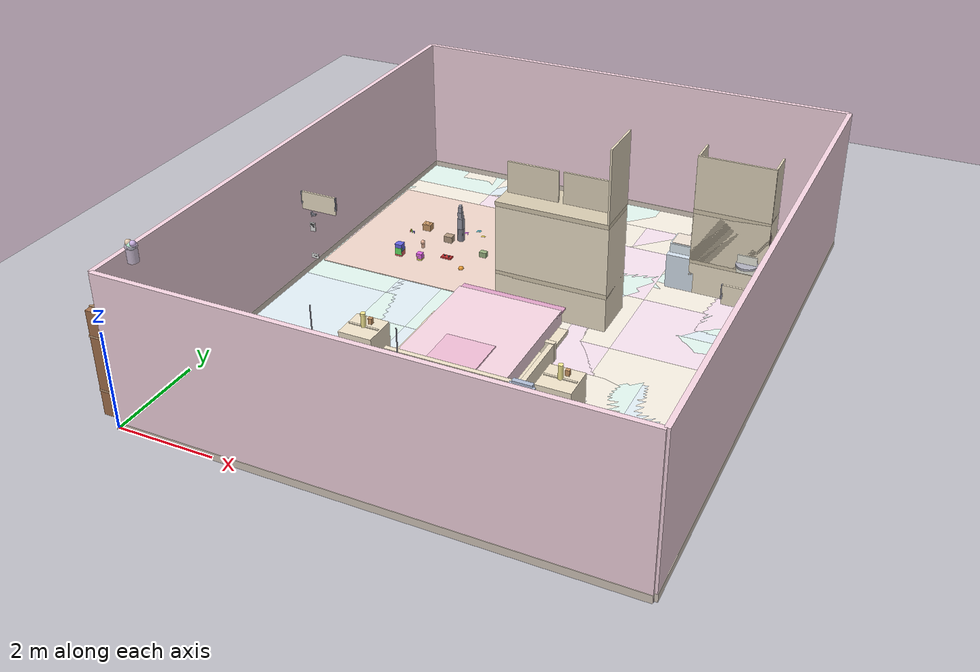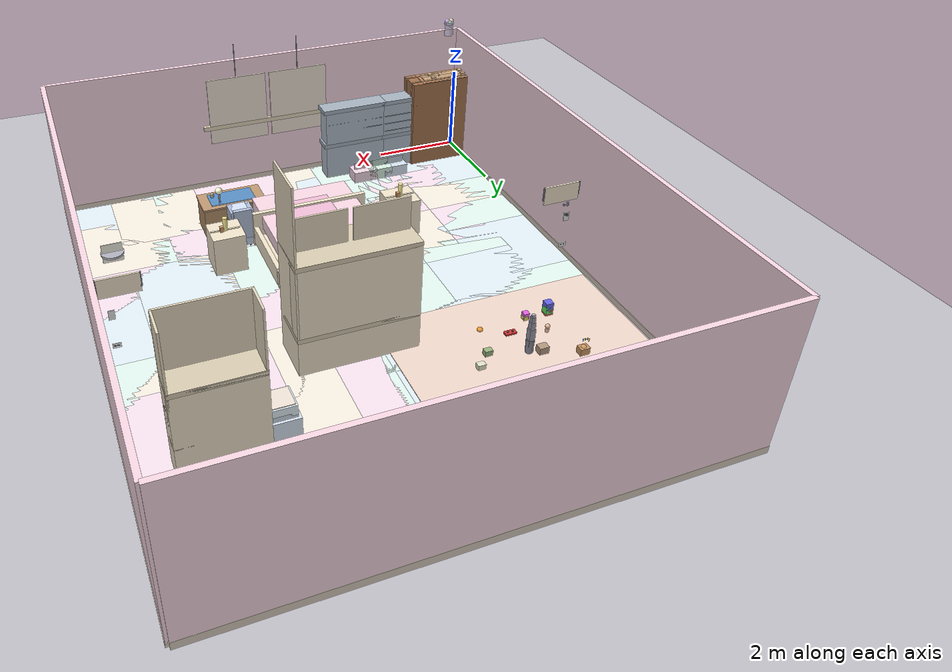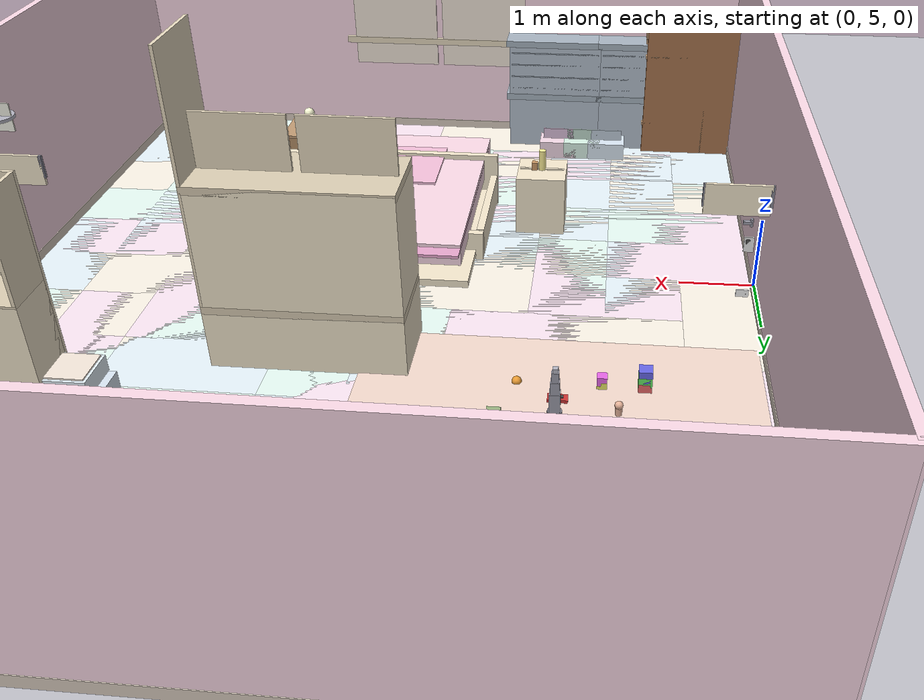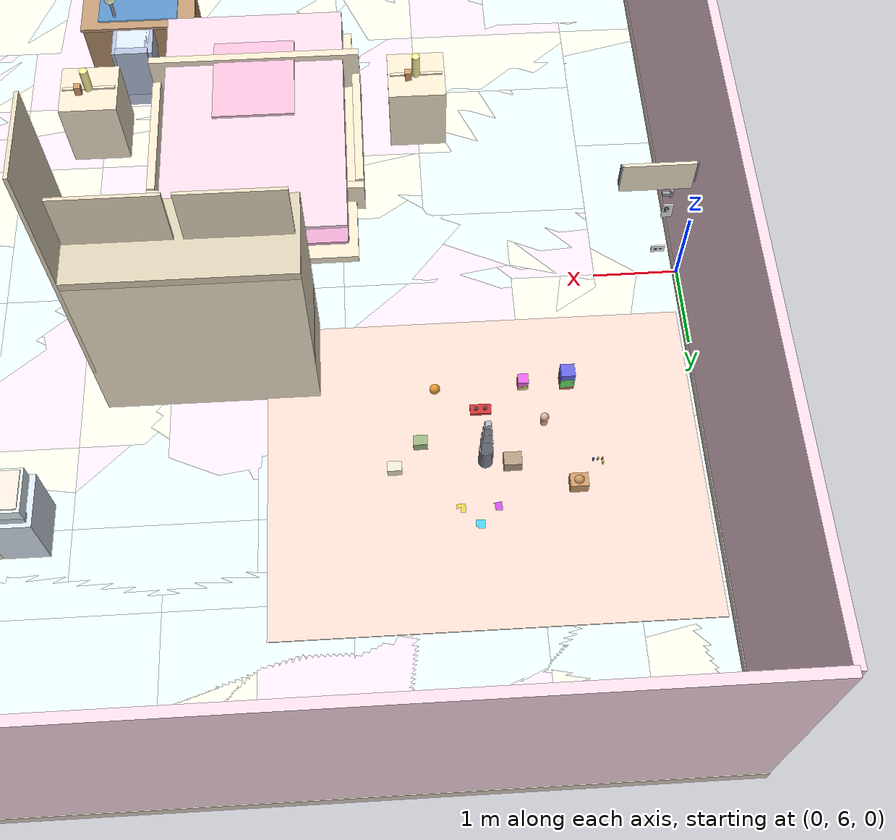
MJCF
<mujoco model="kids_room">
  <compiler angle="degree" inertiafromgeom="true"/>
  <option gravity="0 0 -9.81" integrator="RK4" timestep="0.002">
    <flag warmstart="enable"/>
  </option>
  <default>
    <geom solref="0.01 1" solimp="0.95 0.95 0.001"/>
    <default class="floor"><geom friction="1 0.005 0.0001" rgba="0.75 0.75 0.78 1" contype="1" conaffinity="1"/></default>
    <default class="wall"><geom type="box" rgba="0.98 0.85 0.9 1" contype="1" conaffinity="1"/></default>
    <default class="ceiling"><geom type="box" rgba="0.93 0.93 0.95 1" contype="1" conaffinity="1"/></default>
    <default class="furniture"><geom friction="0.8 0.03 0.001" rgba="0.65 0.65 0.68 1" contype="1" conaffinity="1"/></default>
    <default class="wood"><geom friction="0.8 0.03 0.001" rgba="0.95 0.9 0.8 1" contype="1" conaffinity="1"/></default>
    <default class="metal"><geom friction="0.9 0.02 0.001" rgba="0.55 0.55 0.6 1" contype="1" conaffinity="1"/></default>
    <default class="plastic"><geom friction="0.6 0.02 0.001" rgba="0.7 0.7 0.8 1" contype="1" conaffinity="1"/></default>
    <default class="toy"><geom type="sphere" size="0.08" friction="0.6 0.01 0.001" rgba="0.9 0.4 0.4 1" contype="1" conaffinity="1"/></default>
    <default class="lamp"><geom rgba="1 1 0.75 1" contype="0" conaffinity="0"/></default>
    <default class="arm"><geom rgba="0.45 0.48 0.52 1" friction="0.9 0.02 0.001" contype="1" conaffinity="1"/></default>
    <default class="decoration"><geom contype="0" conaffinity="0"/></default>
  </default>
  <worldbody>
    <!-- Soft natural lighting - no floor emission -->
    <!-- Main ambient light from above (soft natural daylight) -->
    <light name="ambient_top" pos="5 6 4.0" dir="0 0 -1" diffuse="0.4 0.42 0.45" specular="0.1 0.1 0.1"/>
    <!-- Natural light from window (north side) -->
    <light name="window_light" pos="5 0.2 2.0" dir="0 1 0" diffuse="0.5 0.52 0.55" specular="0.15 0.15 0.15"/>
    <!-- Soft fill lights for natural illumination -->
    <light name="north_soft" pos="5 0 3.0" dir="0 0 -1" diffuse="0.25 0.26 0.28" specular="0.05 0.05 0.05"/>
    <light name="south_soft" pos="5 12 3.0" dir="0 0 -1" diffuse="0.25 0.26 0.28" specular="0.05 0.05 0.05"/>
    <light name="west_soft" pos="0 6 3.0" dir="0 0 -1" diffuse="0.25 0.26 0.28" specular="0.05 0.05 0.05"/>
    <light name="east_soft" pos="10 6 3.0" dir="0 0 -1" diffuse="0.25 0.26 0.28" specular="0.05 0.05 0.05"/>
    <body name="room">
      <camera name="top_view" pos="5 8.5 2.5" euler="-45 0 0" mode="fixed"/>
      <geom name="floor_plane" class="floor" type="plane" pos="0 0 0" size="40 40 0.1"/>
      <geom name="floor_visual" class="floor" type="box" pos="5 6 0" size="5 6 0.03" rgba="0.75 0.75 0.78 1"/>
      <!-- Decorative floor pattern - full room coverage -->
      <!-- Row 1 (y=1) -->
      <geom class="floor" type="box" pos="1 1 0.031" size="1 1 0.001" rgba="0.9 0.95 0.98 1"/>
      <geom class="floor" type="box" pos="2 1 0.031" size="1 1 0.001" rgba="0.98 0.9 0.95 1"/>
      <geom class="floor" type="box" pos="3 1 0.031" size="1 1 0.001" rgba="0.9 0.98 0.95 1"/>
      <geom class="floor" type="box" pos="4 1 0.031" size="1 1 0.001" rgba="0.98 0.95 0.9 1"/>
      <geom class="floor" type="box" pos="5 1 0.031" size="1 1 0.001" rgba="0.9 0.95 0.98 1"/>
      <geom class="floor" type="box" pos="6 1 0.031" size="1 1 0.001" rgba="0.98 0.9 0.95 1"/>
      <geom class="floor" type="box" pos="7 1 0.031" size="1 1 0.001" rgba="0.9 0.98 0.95 1"/>
      <geom class="floor" type="box" pos="8 1 0.031" size="1 1 0.001" rgba="0.98 0.95 0.9 1"/>
      <geom class="floor" type="box" pos="9 1 0.031" size="1 1 0.001" rgba="0.9 0.95 0.98 1"/>

      <!-- Row 2 (y=2) -->
      <geom class="floor" type="box" pos="1 2 0.031" size="1 1 0.001" rgba="0.98 0.95 0.9 1"/>
      <geom class="floor" type="box" pos="2 2 0.031" size="1 1 0.001" rgba="0.9 0.95 0.98 1"/>
      <geom class="floor" type="box" pos="3 2 0.031" size="1 1 0.001" rgba="0.98 0.9 0.95 1"/>
      <geom class="floor" type="box" pos="4 2 0.031" size="1 1 0.001" rgba="0.9 0.98 0.95 1"/>
      <geom class="floor" type="box" pos="5 2 0.031" size="1 1 0.001" rgba="0.98 0.95 0.9 1"/>
      <geom class="floor" type="box" pos="6 2 0.031" size="1 1 0.001" rgba="0.9 0.95 0.98 1"/>
      <geom class="floor" type="box" pos="7 2 0.031" size="1 1 0.001" rgba="0.98 0.9 0.95 1"/>
      <geom class="floor" type="box" pos="8 2 0.031" size="1 1 0.001" rgba="0.9 0.98 0.95 1"/>
      <geom class="floor" type="box" pos="9 2 0.031" size="1 1 0.001" rgba="0.98 0.95 0.9 1"/>

      <!-- Row 3 (y=3) -->
      <geom class="floor" type="box" pos="1 3 0.031" size="1 1 0.001" rgba="0.9 0.98 0.95 1"/>
      <geom class="floor" type="box" pos="2 3 0.031" size="1 1 0.001" rgba="0.98 0.95 0.9 1"/>
      <geom class="floor" type="box" pos="3 3 0.031" size="1 1 0.001" rgba="0.9 0.95 0.98 1"/>
      <geom class="floor" type="box" pos="4 3 0.031" size="1 1 0.001" rgba="0.98 0.9 0.95 1"/>
      <geom class="floor" type="box" pos="5 3 0.031" size="1 1 0.001" rgba="0.9 0.98 0.95 1"/>
      <geom class="floor" type="box" pos="6 3 0.031" size="1 1 0.001" rgba="0.98 0.95 0.9 1"/>
      <geom class="floor" type="box" pos="7 3 0.031" size="1 1 0.001" rgba="0.9 0.95 0.98 1"/>
      <geom class="floor" type="box" pos="8 3 0.031" size="1 1 0.001" rgba="0.98 0.9 0.95 1"/>
      <geom class="floor" type="box" pos="9 3 0.031" size="1 1 0.001" rgba="0.9 0.98 0.95 1"/>

      <!-- Row 4 (y=4) -->
      <geom class="floor" type="box" pos="1 4 0.031" size="1 1 0.001" rgba="0.98 0.9 0.95 1"/>
      <geom class="floor" type="box" pos="2 4 0.031" size="1 1 0.001" rgba="0.9 0.98 0.95 1"/>
      <geom class="floor" type="box" pos="3 4 0.031" size="1 1 0.001" rgba="0.98 0.95 0.9 1"/>
      <geom class="floor" type="box" pos="4 4 0.031" size="1 1 0.001" rgba="0.9 0.95 0.98 1"/>
      <geom class="floor" type="box" pos="5 4 0.031" size="1 1 0.001" rgba="0.98 0.9 0.95 1"/>
      <geom class="floor" type="box" pos="6 4 0.031" size="1 1 0.001" rgba="0.9 0.98 0.95 1"/>
      <geom class="floor" type="box" pos="7 4 0.031" size="1 1 0.001" rgba="0.98 0.95 0.9 1"/>
      <geom class="floor" type="box" pos="8 4 0.031" size="1 1 0.001" rgba="0.9 0.95 0.98 1"/>
      <geom class="floor" type="box" pos="9 4 0.031" size="1 1 0.001" rgba="0.98 0.9 0.95 1"/>

      <!-- Row 5 (y=5) -->
      <geom class="floor" type="box" pos="1 5 0.031" size="1 1 0.001" rgba="0.9 0.95 0.98 1"/>
      <geom class="floor" type="box" pos="2 5 0.031" size="1 1 0.001" rgba="0.98 0.9 0.95 1"/>
      <geom class="floor" type="box" pos="3 5 0.031" size="1 1 0.001" rgba="0.9 0.98 0.95 1"/>
      <geom class="floor" type="box" pos="4 5 0.031" size="1 1 0.001" rgba="0.98 0.95 0.9 1"/>
      <geom class="floor" type="box" pos="5 5 0.031" size="1 1 0.001" rgba="0.9 0.95 0.98 1"/>
      <geom class="floor" type="box" pos="6 5 0.031" size="1 1 0.001" rgba="0.98 0.9 0.95 1"/>
      <geom class="floor" type="box" pos="7 5 0.031" size="1 1 0.001" rgba="0.9 0.98 0.95 1"/>
      <geom class="floor" type="box" pos="8 5 0.031" size="1 1 0.001" rgba="0.98 0.95 0.9 1"/>
      <geom class="floor" type="box" pos="9 5 0.031" size="1 1 0.001" rgba="0.9 0.95 0.98 1"/>

      <!-- Row 6 (y=6) -->
      <geom class="floor" type="box" pos="1 6 0.031" size="1 1 0.001" rgba="0.98 0.95 0.9 1"/>
      <geom class="floor" type="box" pos="2 6 0.031" size="1 1 0.001" rgba="0.9 0.95 0.98 1"/>
      <geom class="floor" type="box" pos="3 6 0.031" size="1 1 0.001" rgba="0.98 0.9 0.95 1"/>
      <geom class="floor" type="box" pos="4 6 0.031" size="1 1 0.001" rgba="0.9 0.98 0.95 1"/>
      <geom class="floor" type="box" pos="5 6 0.031" size="1 1 0.001" rgba="0.98 0.95 0.9 1"/>
      <geom class="floor" type="box" pos="6 6 0.031" size="1 1 0.001" rgba="0.9 0.95 0.98 1"/>
      <geom class="floor" type="box" pos="7 6 0.031" size="1 1 0.001" rgba="0.98 0.9 0.95 1"/>
      <geom class="floor" type="box" pos="8 6 0.031" size="1 1 0.001" rgba="0.9 0.98 0.95 1"/>
      <geom class="floor" type="box" pos="9 6 0.031" size="1 1 0.001" rgba="0.98 0.95 0.9 1"/>

      <!-- Row 7 (y=7) -->
      <geom class="floor" type="box" pos="1 7 0.031" size="1 1 0.001" rgba="0.9 0.98 0.95 1"/>
      <geom class="floor" type="box" pos="2 7 0.031" size="1 1 0.001" rgba="0.98 0.95 0.9 1"/>
      <geom class="floor" type="box" pos="3 7 0.031" size="1 1 0.001" rgba="0.9 0.95 0.98 1"/>
      <geom class="floor" type="box" pos="4 7 0.031" size="1 1 0.001" rgba="0.98 0.9 0.95 1"/>
      <geom class="floor" type="box" pos="5 7 0.031" size="1 1 0.001" rgba="0.9 0.98 0.95 1"/>
      <geom class="floor" type="box" pos="6 7 0.031" size="1 1 0.001" rgba="0.98 0.95 0.9 1"/>
      <geom class="floor" type="box" pos="7 7 0.031" size="1 1 0.001" rgba="0.9 0.95 0.98 1"/>
      <geom class="floor" type="box" pos="8 7 0.031" size="1 1 0.001" rgba="0.98 0.9 0.95 1"/>
      <geom class="floor" type="box" pos="9 7 0.031" size="1 1 0.001" rgba="0.9 0.98 0.95 1"/>

      <!-- Row 8 (y=8) -->
      <geom class="floor" type="box" pos="1 8 0.031" size="1 1 0.001" rgba="0.98 0.9 0.95 1"/>
      <geom class="floor" type="box" pos="2 8 0.031" size="1 1 0.001" rgba="0.9 0.98 0.95 1"/>
      <geom class="floor" type="box" pos="3 8 0.031" size="1 1 0.001" rgba="0.98 0.95 0.9 1"/>
      <geom class="floor" type="box" pos="4 8 0.031" size="1 1 0.001" rgba="0.9 0.95 0.98 1"/>
      <geom class="floor" type="box" pos="5 8 0.031" size="1 1 0.001" rgba="0.98 0.9 0.95 1"/>
      <geom class="floor" type="box" pos="6 8 0.031" size="1 1 0.001" rgba="0.9 0.98 0.95 1"/>
      <geom class="floor" type="box" pos="7 8 0.031" size="1 1 0.001" rgba="0.98 0.95 0.9 1"/>
      <geom class="floor" type="box" pos="8 8 0.031" size="1 1 0.001" rgba="0.9 0.95 0.98 1"/>
      <geom class="floor" type="box" pos="9 8 0.031" size="1 1 0.001" rgba="0.98 0.9 0.95 1"/>

      <!-- Row 9 (y=9) -->
      <geom class="floor" type="box" pos="1 9 0.031" size="1 1 0.001" rgba="0.9 0.95 0.98 1"/>
      <geom class="floor" type="box" pos="2 9 0.031" size="1 1 0.001" rgba="0.98 0.9 0.95 1"/>
      <geom class="floor" type="box" pos="3 9 0.031" size="1 1 0.001" rgba="0.9 0.98 0.95 1"/>
      <geom class="floor" type="box" pos="4 9 0.031" size="1 1 0.001" rgba="0.98 0.95 0.9 1"/>
      <geom class="floor" type="box" pos="5 9 0.031" size="1 1 0.001" rgba="0.9 0.95 0.98 1"/>
      <geom class="floor" type="box" pos="6 9 0.031" size="1 1 0.001" rgba="0.98 0.9 0.95 1"/>
      <geom class="floor" type="box" pos="7 9 0.031" size="1 1 0.001" rgba="0.9 0.98 0.95 1"/>
      <geom class="floor" type="box" pos="8 9 0.031" size="1 1 0.001" rgba="0.98 0.95 0.9 1"/>
      <geom class="floor" type="box" pos="9 9 0.031" size="1 1 0.001" rgba="0.9 0.95 0.98 1"/>

      <!-- Row 10 (y=10) -->
      <geom class="floor" type="box" pos="1 10 0.031" size="1 1 0.001" rgba="0.98 0.95 0.9 1"/>
      <geom class="floor" type="box" pos="2 10 0.031" size="1 1 0.001" rgba="0.9 0.95 0.98 1"/>
      <geom class="floor" type="box" pos="3 10 0.031" size="1 1 0.001" rgba="0.98 0.9 0.95 1"/>
      <geom class="floor" type="box" pos="4 10 0.031" size="1 1 0.001" rgba="0.9 0.98 0.95 1"/>
      <geom class="floor" type="box" pos="5 10 0.031" size="1 1 0.001" rgba="0.98 0.95 0.9 1"/>
      <geom class="floor" type="box" pos="6 10 0.031" size="1 1 0.001" rgba="0.9 0.95 0.98 1"/>
      <geom class="floor" type="box" pos="7 10 0.031" size="1 1 0.001" rgba="0.98 0.9 0.95 1"/>
      <geom class="floor" type="box" pos="8 10 0.031" size="1 1 0.001" rgba="0.9 0.98 0.95 1"/>
      <geom class="floor" type="box" pos="9 10 0.031" size="1 1 0.001" rgba="0.98 0.95 0.9 1"/>

      <!-- Row 11 (y=11) -->
      <geom class="floor" type="box" pos="1 11 0.031" size="1 1 0.001" rgba="0.9 0.98 0.95 1"/>
      <geom class="floor" type="box" pos="2 11 0.031" size="1 1 0.001" rgba="0.98 0.95 0.9 1"/>
      <geom class="floor" type="box" pos="3 11 0.031" size="1 1 0.001" rgba="0.9 0.95 0.98 1"/>
      <geom class="floor" type="box" pos="4 11 0.031" size="1 1 0.001" rgba="0.98 0.9 0.95 1"/>
      <geom class="floor" type="box" pos="5 11 0.031" size="1 1 0.001" rgba="0.9 0.98 0.95 1"/>
      <geom class="floor" type="box" pos="6 11 0.031" size="1 1 0.001" rgba="0.98 0.95 0.9 1"/>
      <geom class="floor" type="box" pos="7 11 0.031" size="1 1 0.001" rgba="0.9 0.95 0.98 1"/>
      <geom class="floor" type="box" pos="8 11 0.031" size="1 1 0.001" rgba="0.98 0.9 0.95 1"/>
      <geom class="floor" type="box" pos="9 11 0.031" size="1 1 0.001" rgba="0.9 0.98 0.95 1"/>
      <!-- Walls with baseboards -->
      <geom name="north_wall" class="wall" pos="5 0 1.6" size="5 0.05 1.6" rgba="0.98 0.85 0.9 1"/>
      <geom name="south_wall" class="wall" pos="5 12 1.6" size="5 0.05 1.6" rgba="0.98 0.85 0.9 1"/>
      <geom name="west_wall" class="wall" pos="0 6 1.6" size="0.05 6 1.6" rgba="0.98 0.85 0.9 1"/>
      <geom name="east_wall" class="wall" pos="10 6 1.6" size="0.05 6 1.6" rgba="0.98 0.85 0.9 1"/>
      <!-- Baseboards -->
      <geom class="wood" type="box" pos="5 0 0.08" size="5 0.06 0.08" rgba="0.85 0.8 0.75 1"/>
      <geom class="wood" type="box" pos="5 12 0.08" size="5 0.06 0.08" rgba="0.85 0.8 0.75 1"/>
      <geom class="wood" type="box" pos="0 6 0.08" size="0.06 6 0.08" rgba="0.85 0.8 0.75 1"/>
      <geom class="wood" type="box" pos="10 6 0.08" size="0.06 6 0.08" rgba="0.85 0.8 0.75 1"/>
      <!-- Windows with enhanced details -->
      <geom name="north_window" type="box" pos="5 0 2.0" size="1.5 0.02 0.8" rgba="0.3 0.6 0.9 0.6"/>
      <geom name="north_window_frame1" class="metal" type="box" pos="4.25 0 2.0" size="0.02 0.03 0.85"/>
      <geom name="north_window_frame2" class="metal" type="box" pos="5.75 0 2.0" size="0.02 0.03 0.85"/>
      <geom name="north_window_frame3" class="metal" type="box" pos="5 0 1.6" size="1.55 0.03 0.02"/>
      <geom name="north_window_frame4" class="metal" type="box" pos="5 0 2.4" size="1.55 0.03 0.02"/>
      <!-- Window crossbar -->
      <geom class="metal" type="box" pos="5 0 2.0" size="1.5 0.03 0.02"/>
      <!-- Curtains -->
      <body name="curtain_left" pos="4.25 0.1 2.0">
        <geom class="plastic" type="box" size="0.7 0.02 0.8" rgba="0.95 0.9 0.85 0.9"/>
        <geom class="metal" type="cylinder" size="0.01 0.7" pos="0 0 0.9" rgba="0.6 0.6 0.65 1"/>
      </body>
      <body name="curtain_right" pos="5.75 0.1 2.0">
        <geom class="plastic" type="box" size="0.7 0.02 0.8" rgba="0.95 0.9 0.85 0.9"/>
        <geom class="metal" type="cylinder" size="0.01 0.7" pos="0 0 0.9" rgba="0.6 0.6 0.65 1"/>
      </body>
      <!-- Window sill -->
      <geom class="wood" type="box" pos="5 0.05 1.6" size="1.6 0.08 0.05" rgba="0.9 0.85 0.75 1"/>
      <!-- Wall decorations with frames -->
      <body name="painting1_frame" pos="3 0 2.2">
        <geom class="wood" type="box" size="0.65 0.02 0.45" rgba="0.7 0.5 0.3 1"/>
        <geom name="painting1" type="box" pos="0 0 0" size="0.6 0.01 0.4" rgba="0.9 0.7 0.5 1"/>
      </body>
      <body name="painting2_frame" pos="7 0 2.2">
        <geom class="wood" type="box" size="0.65 0.02 0.45" rgba="0.7 0.5 0.3 1"/>
        <geom name="painting2" type="box" pos="0 0 0" size="0.6 0.01 0.4" rgba="0.5 0.7 0.9 1"/>
      </body>
      <body name="painting3_frame" pos="3 12 2.2">
        <geom class="wood" type="box" size="0.65 0.02 0.45" rgba="0.7 0.5 0.3 1"/>
        <geom name="painting3" type="box" pos="0 0 0" size="0.6 0.01 0.4" rgba="0.7 0.9 0.5 1"/>
      </body>
      <body name="painting4_frame" pos="7 12 2.2">
        <geom class="wood" type="box" size="0.65 0.02 0.45" rgba="0.7 0.5 0.3 1"/>
        <geom name="painting4" type="box" pos="0 0 0" size="0.6 0.01 0.4" rgba="0.9 0.5 0.9 1"/>
      </body>
      <!-- Enhanced shelves with brackets -->
      <body name="shelf1" pos="3 12 1.8">
        <geom class="wood" type="box" size="0.4 0.02 0.2"/>
        <geom class="metal" type="box" size="0.02 0.02 0.15" pos="0.4 0 0.05" rgba="0.5 0.5 0.55 1"/>
        <geom class="metal" type="box" size="0.02 0.02 0.15" pos="-0.4 0 0.05" rgba="0.5 0.5 0.55 1"/>
      </body>
      <body name="shelf2" pos="7 12 1.8">
        <geom class="wood" type="box" size="0.4 0.02 0.2"/>
        <geom class="metal" type="box" size="0.02 0.02 0.15" pos="0.4 0 0.05" rgba="0.5 0.5 0.55 1"/>
        <geom class="metal" type="box" size="0.02 0.02 0.15" pos="-0.4 0 0.05" rgba="0.5 0.5 0.55 1"/>
      </body>
      <body name="shelf3" pos="0.5 6 1.8">
        <geom class="wood" type="box" size="0.4 0.02 0.2"/>
        <geom class="metal" type="box" size="0.02 0.02 0.15" pos="0.4 0 0.05" rgba="0.5 0.5 0.55 1"/>
        <geom class="metal" type="box" size="0.02 0.02 0.15" pos="-0.4 0 0.05" rgba="0.5 0.5 0.55 1"/>
      </body>
      <body name="shelf4" pos="9.5 6 1.8">
        <geom class="wood" type="box" size="0.4 0.02 0.2"/>
        <geom class="metal" type="box" size="0.02 0.02 0.15" pos="0.4 0 0.05" rgba="0.5 0.5 0.55 1"/>
        <geom class="metal" type="box" size="0.02 0.02 0.15" pos="-0.4 0 0.05" rgba="0.5 0.5 0.55 1"/>
      </body>
      <!-- Light switches -->
      <body name="light_switch1" pos="0.3 6 1.2">
        <geom class="plastic" type="box" size="0.06 0.01 0.1" rgba="0.9 0.9 0.9 1"/>
        <geom class="metal" type="box" size="0.04 0.01 0.04" pos="0 0 0.03" rgba="0.3 0.3 0.3 1"/>
      </body>
      <body name="light_switch2" pos="9.7 6 1.2">
        <geom class="plastic" type="box" size="0.06 0.01 0.1" rgba="0.9 0.9 0.9 1"/>
        <geom class="metal" type="box" size="0.04 0.01 0.04" pos="0 0 0.03" rgba="0.3 0.3 0.3 1"/>
      </body>
      <!-- Electrical outlets -->
      <body name="outlet1" pos="0.3 6 0.5">
        <geom class="plastic" type="box" size="0.08 0.01 0.05" rgba="0.95 0.95 0.95 1"/>
        <geom class="metal" type="box" size="0.02 0.01 0.01" pos="0.03 0 0" rgba="0.2 0.2 0.2 1"/>
        <geom class="metal" type="box" size="0.02 0.01 0.01" pos="-0.03 0 0" rgba="0.2 0.2 0.2 1"/>
      </body>
      <body name="outlet2" pos="9.7 6 0.5">
        <geom class="plastic" type="box" size="0.08 0.01 0.05" rgba="0.95 0.95 0.95 1"/>
        <geom class="metal" type="box" size="0.02 0.01 0.01" pos="0.03 0 0" rgba="0.2 0.2 0.2 1"/>
        <geom class="metal" type="box" size="0.02 0.01 0.01" pos="-0.03 0 0" rgba="0.2 0.2 0.2 1"/>
      </body>
      <!-- Ceiling removed for better visibility of room contents -->
    </body>
    <body name="rest_area">
      <!-- Redesigned rest area with new bed and furniture layout -->
      <!-- Update rug to match new layout -->
      <geom name="rest_rug" type="box" pos="5 4 0.01" size="2.5 3 0.01" rgba="0.85 0.92 0.98 1"/>

      <!-- New bed design -->
      <body name="bed" pos="5 4 0.3" euler="0 0 0">
        <!-- Bed frame -->
        <geom class="wood" type="box" size="1.2 1.8 0.05" pos="0 0 0" rgba="0.95 0.9 0.8 1"/>
        <!-- Headboard -->
        <geom class="wood" type="box" size="1.3 0.05 0.4" pos="0 -0.925 0.2" rgba="0.95 0.9 0.8 1"/>
        <!-- Footboard -->
        <geom class="wood" type="box" size="1.3 0.05 0.2" pos="0 0.925 0.1" rgba="0.95 0.9 0.8 1"/>
        <!-- Side rails -->
        <geom class="wood" type="box" size="0.05 0.85 0.2" pos="1.25 0 0.1" rgba="0.95 0.9 0.8 1"/>
        <geom class="wood" type="box" size="0.05 0.85 0.2" pos="-1.25 0 0.1" rgba="0.95 0.9 0.8 1"/>
        <!-- Mattress -->
        <geom type="box" size="1.1 1.7 0.15" pos="0 0 0.375" rgba="0.98 0.85 0.9 1"/>
        <!-- Pillow -->
        <geom type="box" size="0.5 0.6 0.08" pos="0 -0.6 0.48" rgba="0.95 0.75 0.85 1"/>
        <!-- Blanket -->
        <geom type="box" size="1.1 1.7 0.02" pos="0 0.2 0.46" rgba="0.9 0.65 0.8 1"/>
      </body>

      <!-- New bedside cabinets (both sides) - Fixed positions to avoid bed overlap -->
      <body name="bedside_cabinet_left" pos="3.0 3.5 0.3">
        <geom class="wood" type="box" size="0.35 0.35 0.6" rgba="0.95 0.9 0.8 1"/>
        <!-- Drawers -->
        <geom class="wood" type="box" size="0.3 0.3 0.15" pos="0 0 0.175" rgba="0.9 0.85 0.75 1"/>
        <geom class="wood" type="box" size="0.3 0.3 0.15" pos="0 0 0.425" rgba="0.9 0.85 0.75 1"/>
        <geom class="wood" type="box" size="0.32 0.02 0.32" pos="0 0 0.3" rgba="0.95 0.9 0.8 1"/>
        <!-- Drawer handles -->
        <geom class="metal" type="cylinder" size="0.015 0.05" pos="0.15 0 0.175" rgba="0.7 0.7 0.75 1"/>
        <geom class="metal" type="cylinder" size="0.015 0.05" pos="0.15 0 0.425" rgba="0.7 0.7 0.75 1"/>
        <!-- Items on cabinet -->
        <geom class="lamp" type="cylinder" size="0.05 0.25" pos="0 0 0.65" rgba="1 0.95 0.6 1"/>
        <!-- Decorative items -->
        <geom class="decoration" type="box" size="0.04 0.04 0.06" pos="0.1 0.1 0.7" rgba="0.8 0.6 0.4 1"/>
      </body>

      <body name="bedside_cabinet_right" pos="7.0 3.5 0.3">
        <geom class="wood" type="box" size="0.35 0.35 0.6" rgba="0.95 0.9 0.8 1"/>
        <!-- Drawers -->
        <geom class="wood" type="box" size="0.3 0.3 0.15" pos="0 0 0.175" rgba="0.9 0.85 0.75 1"/>
        <geom class="wood" type="box" size="0.3 0.3 0.15" pos="0 0 0.425" rgba="0.9 0.85 0.75 1"/>
        <geom class="wood" type="box" size="0.32 0.02 0.32" pos="0 0 0.3" rgba="0.95 0.9 0.8 1"/>
        <!-- Drawer handles -->
        <geom class="metal" type="cylinder" size="0.015 0.05" pos="0.15 0 0.175" rgba="0.7 0.7 0.75 1"/>
        <geom class="metal" type="cylinder" size="0.015 0.05" pos="0.15 0 0.425" rgba="0.7 0.7 0.75 1"/>
        <!-- Items on cabinet -->
        <geom class="lamp" type="cylinder" size="0.05 0.25" pos="0 0 0.65" rgba="1 0.95 0.6 1"/>
        <!-- Decorative items -->
        <geom class="decoration" type="box" size="0.04 0.04 0.06" pos="0.1 0.1 0.7" rgba="0.8 0.6 0.4 1"/>
      </body>

      <!-- Enhanced wardrobe design with doors, handles, and removable clothes -->
      <body name="wardrobe" pos="5.5 7 0.8" euler="0 0 90">
        <!-- Main wardrobe frame (width=0.5, depth=1.2, height=1.6) -->
        <geom class="wood" type="box" size="0.5 1.2 1.6" rgba="0.95 0.9 0.8 1"/>
        <!-- Back panel -->
        <geom class="wood" type="box" size="0.5 0.02 1.6" pos="0 -1.18 1.6" rgba="0.9 0.85 0.75 1"/>
        <!-- Top and bottom panels -->
        <geom class="wood" type="box" size="0.5 1.2 0.05" pos="0 0 1.575" rgba="0.85 0.8 0.7 1"/>
        <geom class="wood" type="box" size="0.5 1.2 0.05" pos="0 0 0.025" rgba="0.85 0.8 0.7 1"/>

        <!-- Wardrobe doors (front opening) -->
        <body name="wardrobe_door_left" pos="0 0.6 0.8">
          <geom class="wood" type="box" size="0.02 0.55 1.5" rgba="0.9 0.85 0.75 1"/>
          <!-- Door handle -->
          <geom class="metal" type="cylinder" size="0.015 0.06" pos="0.025 0 0" rgba="0.7 0.7 0.75 1"/>
        </body>
        <body name="wardrobe_door_right" pos="0 -0.6 0.8">
          <geom class="wood" type="box" size="0.02 0.55 1.5" rgba="0.9 0.85 0.75 1"/>
          <!-- Door handle -->
          <geom class="metal" type="cylinder" size="0.015 0.06" pos="0.025 0 0" rgba="0.7 0.7 0.75 1"/>
        </body>

        <!-- Internal shelves -->
        <geom class="wood" type="box" size="0.48 1.15 0.03" pos="0 0 0.4" rgba="0.9 0.85 0.75 1"/>
        <geom class="wood" type="box" size="0.48 1.15 0.03" pos="0 0 0.8" rgba="0.9 0.85 0.75 1"/>
        <geom class="wood" type="box" size="0.48 1.15 0.03" pos="0 0 1.2" rgba="0.9 0.85 0.75 1"/>

        <!-- Removable clothes on shelves (for robot manipulation) -->
        <!-- Bottom shelf - folded clothes -->
        <body name="clothes_01" pos="0 0.3 0.4">
          <geom class="plastic" type="box" size="0.15 0.1 0.08" rgba="0.8 0.2 0.3 1"/>
        </body>
        <body name="clothes_02" pos="0 -0.3 0.4">
          <geom class="plastic" type="box" size="0.15 0.1 0.08" rgba="0.2 0.3 0.8 1"/>
        </body>
        <!-- Middle shelf - folded clothes -->
        <body name="clothes_03" pos="0 0.5 0.8">
          <geom class="plastic" type="box" size="0.15 0.1 0.08" rgba="0.3 0.8 0.2 1"/>
        </body>
        <body name="clothes_04" pos="0 0.1 0.8">
          <geom class="plastic" type="box" size="0.15 0.1 0.08" rgba="0.8 0.6 0.2 1"/>
        </body>
        <body name="clothes_05" pos="0 -0.3 0.8">
          <geom class="plastic" type="box" size="0.15 0.1 0.08" rgba="0.6 0.2 0.8 1"/>
        </body>
        <!-- Top shelf - hanging clothes (simplified as boxes) -->
        <body name="clothes_06" pos="0 0.4 1.2">
          <geom class="plastic" type="box" size="0.12 0.08 0.25" rgba="0.9 0.3 0.3 1"/>
        </body>
        <body name="clothes_07" pos="0 -0.2 1.2">
          <geom class="plastic" type="box" size="0.12 0.08 0.25" rgba="0.3 0.3 0.9 1"/>
        </body>
        <body name="clothes_08" pos="0 -0.6 1.2">
          <geom class="plastic" type="box" size="0.12 0.08 0.25" rgba="0.3 0.7 0.3 1"/>
        </body>
      </body>

    </body>

    <!-- New bookshelf in empty area -->
    <body name="bookshelf_area">
      <geom name="bookshelf_rug" type="box" pos="8 9 0.01" size="1.5 2 0.01" rgba="0.9 0.95 0.9 1"/>

      <!-- Bookshelf structure - Fixed design (2 shelves only) -->
      <body name="bookshelf" pos="8.5 9 0.75">
        <!-- Main bookshelf frame (width=0.8, depth=0.3, height=1.2) -->
        <geom class="wood" type="box" size="0.8 0.3 1.2" rgba="0.95 0.9 0.8 1"/>
        <!-- Bookshelf back panel -->
        <geom class="wood" type="box" size="0.8 0.02 1.2" pos="0 -0.28 1.2" rgba="0.9 0.85 0.75 1"/>
        <!-- Side panels -->
        <geom class="wood" type="box" size="0.02 0.3 1.2" pos="0.78 0 1.2" rgba="0.9 0.85 0.75 1"/>
        <geom class="wood" type="box" size="0.02 0.3 1.2" pos="-0.78 0 1.2" rgba="0.9 0.85 0.75 1"/>
        <!-- Top panel -->
        <geom class="wood" type="box" size="0.8 0.3 0.05" pos="0 0 1.175" rgba="0.85 0.8 0.7 1"/>
        <!-- Bottom panel -->
        <geom class="wood" type="box" size="0.8 0.3 0.05" pos="0 0 0.025" rgba="0.85 0.8 0.7 1"/>

        <!-- Shelves (2 shelves, properly spaced) -->
        <geom class="wood" type="box" size="0.76 0.28 0.03" pos="0 0 0.4" rgba="0.9 0.85 0.75 1"/>
        <geom class="wood" type="box" size="0.76 0.28 0.03" pos="0 0 0.8" rgba="0.9 0.85 0.75 1"/>

        <!-- Books on shelves - fully filled -->
        <!-- Bottom shelf (z=0.4) - 12 books -->
        <geom class="plastic" type="box" size="0.08 0.12 0.22" pos="-0.6 -0.15 0.4" rgba="0.8 0.3 0.3 1"/>
        <geom class="plastic" type="box" size="0.07 0.12 0.22" pos="-0.48 -0.15 0.4" rgba="0.3 0.7 0.3 1"/>
        <geom class="plastic" type="box" size="0.09 0.12 0.22" pos="-0.35 -0.15 0.4" rgba="0.3 0.3 0.7 1"/>
        <geom class="plastic" type="box" size="0.08 0.12 0.22" pos="-0.22 -0.15 0.4" rgba="0.8 0.7 0.3 1"/>
        <geom class="plastic" type="box" size="0.07 0.12 0.22" pos="-0.1 -0.15 0.4" rgba="0.7 0.3 0.7 1"/>
        <geom class="plastic" type="box" size="0.09 0.12 0.22" pos="0.03 -0.15 0.4" rgba="0.3 0.7 0.7 1"/>
        <geom class="plastic" type="box" size="0.08 0.12 0.22" pos="0.16 -0.15 0.4" rgba="0.5 0.3 0.7 1"/>
        <geom class="plastic" type="box" size="0.07 0.12 0.22" pos="0.29 -0.15 0.4" rgba="0.7 0.5 0.3 1"/>
        <geom class="plastic" type="box" size="0.09 0.12 0.22" pos="0.42 -0.15 0.4" rgba="0.3 0.5 0.7 1"/>
        <geom class="plastic" type="box" size="0.08 0.12 0.22" pos="0.55 -0.15 0.4" rgba="0.6 0.4 0.4 1"/>
        <geom class="plastic" type="box" size="0.07 0.12 0.22" pos="0.65 -0.15 0.4" rgba="0.4 0.6 0.5 1"/>
        <geom class="plastic" type="box" size="0.08 0.12 0.22" pos="0.72 -0.15 0.4" rgba="0.5 0.4 0.6 1"/>

        <!-- Second shelf (z=0.8) - 12 books -->
        <geom class="plastic" type="box" size="0.07 0.12 0.22" pos="-0.6 -0.15 0.8" rgba="0.7 0.6 0.3 1"/>
        <geom class="plastic" type="box" size="0.09 0.12 0.22" pos="-0.48 -0.15 0.8" rgba="0.3 0.6 0.7 1"/>
        <geom class="plastic" type="box" size="0.08 0.12 0.22" pos="-0.35 -0.15 0.8" rgba="0.6 0.7 0.3 1"/>
        <geom class="plastic" type="box" size="0.07 0.12 0.22" pos="-0.22 -0.15 0.8" rgba="0.7 0.3 0.6 1"/>
        <geom class="plastic" type="box" size="0.09 0.12 0.22" pos="-0.1 -0.15 0.8" rgba="0.3 0.6 0.6 1"/>
        <geom class="plastic" type="box" size="0.08 0.12 0.22" pos="0.03 -0.15 0.8" rgba="0.6 0.3 0.6 1"/>
        <geom class="plastic" type="box" size="0.07 0.12 0.22" pos="0.16 -0.15 0.8" rgba="0.7 0.6 0.6 1"/>
        <geom class="plastic" type="box" size="0.09 0.12 0.22" pos="0.29 -0.15 0.8" rgba="0.6 0.6 0.7 1"/>
        <geom class="plastic" type="box" size="0.08 0.12 0.22" pos="0.42 -0.15 0.8" rgba="0.6 0.7 0.6 1"/>
        <geom class="plastic" type="box" size="0.07 0.12 0.22" pos="0.55 -0.15 0.8" rgba="0.4 0.5 0.6 1"/>
        <geom class="plastic" type="box" size="0.09 0.12 0.22" pos="0.65 -0.15 0.8" rgba="0.5 0.6 0.4 1"/>
        <geom class="plastic" type="box" size="0.08 0.12 0.22" pos="0.72 -0.15 0.8" rgba="0.6 0.5 0.5 1"/>
      </body>

      <!-- Small reading chair next to bookshelf with enhanced details -->
      <body name="reading_chair" pos="7.5 9 0.4">
        <geom class="plastic" type="box" size="0.3 0.3 0.4" rgba="0.85 0.9 0.95 1"/>
        <!-- Chair back -->
        <geom class="plastic" type="box" size="0.25 0.05 0.3" pos="0 0.2 0.2" rgba="0.8 0.85 0.9 1"/>
        <!-- Chair seat -->
        <geom class="plastic" type="box" size="0.25 0.25 0.1" pos="0 0 0.55" rgba="0.9 0.95 0.98 1"/>
        <!-- Chair legs -->
        <geom class="plastic" type="cylinder" size="0.04 0.1" pos="-0.25 0 -0.4" rgba="0.7 0.75 0.8 1"/>
        <geom class="plastic" type="cylinder" size="0.04 0.1" pos="0.25 0 -0.4" rgba="0.7 0.75 0.8 1"/>
        <geom class="plastic" type="cylinder" size="0.04 0.1" pos="0 -0.25 -0.4" rgba="0.7 0.75 0.8 1"/>
        <geom class="plastic" type="cylinder" size="0.04 0.1" pos="0 0.25 -0.4" rgba="0.7 0.75 0.8 1"/>
        <!-- Cushion -->
        <geom type="box" size="0.22 0.22 0.08" pos="0 0 0.59" rgba="0.95 0.9 0.85 1"/>
      </body>

    </body>

    <body name="storage_area">
      <geom name="storage_floor" type="box" pos="2 1.5 0.01" size="2 1.5 0.01" rgba="0.96 0.94 0.9 1"/>
      <body name="large_wardrobe" pos="0.5 0.5 1.1">
        <geom class="wood" type="box" size="1 0.3 1.1" rgba="0.65 0.45 0.3 1"/>
        <!-- Door frames -->
        <geom class="wood" type="box" size="1.02 0.02 1.12" pos="0 0.15 0" rgba="0.8 0.65 0.5 1"/>
        <geom class="wood" type="box" size="1.02 0.02 1.12" pos="0 -0.15 0" rgba="0.8 0.65 0.5 1"/>
        <geom class="wood" type="box" size="1.02 0.3 0.02" pos="0 0 -0.57" rgba="0.8 0.65 0.5 1"/>
        <geom class="wood" type="box" size="1.02 0.3 0.02" pos="0 0 0.57" rgba="0.8 0.65 0.5 1"/>
        <!-- Middle divider -->
        <geom class="wood" type="box" size="0.02 0.3 1.1" pos="0 0 0" rgba="0.8 0.65 0.5 1"/>
        <!-- Doors -->
        <geom class="wood" type="box" size="0.48 0.28 0.01" pos="-0.25 0 1.1" rgba="0.75 0.55 0.4 1"/>
        <geom class="wood" type="box" size="0.48 0.28 0.01" pos="0.25 0 1.1" rgba="0.75 0.55 0.4 1"/>
        <!-- Door panels -->
        <geom class="wood" type="box" size="0.4 0.12 0.01" pos="-0.25 0.08 1.11" rgba="0.78 0.63 0.48 1"/>
        <geom class="wood" type="box" size="0.4 0.12 0.01" pos="-0.25 -0.08 1.11" rgba="0.78 0.63 0.48 1"/>
        <geom class="wood" type="box" size="0.4 0.12 0.01" pos="0.25 0.08 1.11" rgba="0.78 0.63 0.48 1"/>
        <geom class="wood" type="box" size="0.4 0.12 0.01" pos="0.25 -0.08 1.11" rgba="0.78 0.63 0.48 1"/>
        <!-- Enhanced door handles -->
        <geom class="metal" type="box" size="0.03 0.03 0.08" pos="-0.2 0.0 1.0" rgba="0.7 0.7 0.75 1"/>
        <geom class="metal" type="cylinder" size="0.015 0.1" pos="-0.2 0.0 1.05" rgba="0.7 0.7 0.75 1"/>
        <geom class="metal" type="box" size="0.03 0.03 0.08" pos="0.2 0.0 1.0" rgba="0.7 0.7 0.75 1"/>
        <geom class="metal" type="cylinder" size="0.015 0.1" pos="0.2 0.0 1.05" rgba="0.7 0.7 0.75 1"/>
        <!-- Internal shelves -->
        <geom class="wood" type="box" size="0.96 0.01 0.5" pos="0 0.1 0.25" rgba="0.75 0.6 0.45 1"/>
        <geom class="wood" type="box" size="0.96 0.01 0.5" pos="0 -0.1 0.25" rgba="0.75 0.6 0.45 1"/>
        <geom class="wood" type="box" size="0.96 0.01 0.5" pos="0 0.1 -0.25" rgba="0.75 0.6 0.45 1"/>
        <geom class="wood" type="box" size="0.96 0.01 0.5" pos="0 -0.1 -0.25" rgba="0.75 0.6 0.45 1"/>
        <!-- Decorative trim -->
        <geom class="wood" type="box" size="0.05 0.05 0.05" pos="-0.4 0.1 1.11" rgba="0.85 0.7 0.55 1"/>
        <geom class="wood" type="box" size="0.05 0.05 0.05" pos="-0.4 -0.1 1.11" rgba="0.85 0.7 0.55 1"/>
        <geom class="wood" type="box" size="0.05 0.05 0.05" pos="0.4 0.1 1.11" rgba="0.85 0.7 0.55 1"/>
        <geom class="wood" type="box" size="0.05 0.05 0.05" pos="0.4 -0.1 1.11" rgba="0.85 0.7 0.55 1"/>
      <!-- Add a decorative vase on top of wardrobe -->
      <body name="decorative_vase" pos="0 0 2.3">
        <geom class="decoration" type="cylinder" size="0.1 0.15" rgba="0.9 0.85 0.95 0.8"/>
        <!-- Vase rim -->
        <geom class="decoration" type="cylinder" size="0.11 0.02" pos="0 0 0.15" rgba="0.85 0.8 0.9 0.8"/>
        <!-- Flowers in vase -->
        <geom class="decoration" type="sphere" size="0.08" pos="0 0 0.15" rgba="0.7 0.9 0.8 1"/>
        <geom class="decoration" type="sphere" size="0.06" pos="0.05 0 0.2" rgba="0.8 0.7 0.9 1"/>
        <geom class="decoration" type="sphere" size="0.06" pos="-0.05 0 0.2" rgba="0.9 0.8 0.7 1"/>
      </body>
      </body>
      <body name="toy_rack_1" pos="1.5 0.5 0.9">
        <geom class="metal" type="box" size="0.75 0.2 0.9" rgba="0.7 0.75 0.8 1"/>
        <!-- Enhanced frame -->
        <geom class="metal" type="box" size="0.8 0.22 0.05" pos="0 0 0" rgba="0.65 0.7 0.75 1"/>
        <geom class="metal" type="box" size="0.8 0.22 0.05" pos="0 0 0.9" rgba="0.65 0.7 0.75 1"/>
        <!-- Additional shelves -->
        <geom class="plastic" type="box" size="0.7 0.18 0.15" pos="0 0 0.15" rgba="0.8 0.9 0.8 0.8"/>
        <geom class="plastic" type="box" size="0.7 0.18 0.15" pos="0 0 0.35" rgba="0.9 0.8 0.8 0.8"/>
        <geom class="plastic" type="box" size="0.7 0.18 0.15" pos="0 0 0.55" rgba="0.8 0.8 0.9 0.8"/>
        <geom class="plastic" type="box" size="0.7 0.18 0.15" pos="0 0 0.75" rgba="0.9 0.9 0.8 0.8"/>
        <!-- Decorative edges -->
        <geom class="metal" type="box" size="0.72 0.2 0.01" pos="0 0 0.15" rgba="0.6 0.65 0.7 1"/>
        <geom class="metal" type="box" size="0.72 0.2 0.01" pos="0 0 0.35" rgba="0.6 0.65 0.7 1"/>
        <geom class="metal" type="box" size="0.72 0.2 0.01" pos="0 0 0.55" rgba="0.6 0.65 0.7 1"/>
        <geom class="metal" type="box" size="0.72 0.2 0.01" pos="0 0 0.75" rgba="0.6 0.65 0.7 1"/>
        <!-- Decorative corner caps -->
        <geom class="plastic" type="sphere" size="0.03" pos="-0.38 0.11 0" rgba="0.9 0.4 0.4 1"/>
        <geom class="plastic" type="sphere" size="0.03" pos="0.38 0.11 0" rgba="0.9 0.4 0.4 1"/>
        <geom class="plastic" type="sphere" size="0.03" pos="-0.38 -0.11 0" rgba="0.9 0.4 0.4 1"/>
        <geom class="plastic" type="sphere" size="0.03" pos="0.38 -0.11 0" rgba="0.9 0.4 0.4 1"/>
      </body>
      <body name="toy_rack_2" pos="3.0 0.5 0.9">
        <geom class="metal" type="box" size="0.75 0.2 0.9" rgba="0.7 0.75 0.8 1"/>
        <!-- Enhanced frame -->
        <geom class="metal" type="box" size="0.8 0.22 0.05" pos="0 0 0" rgba="0.65 0.7 0.75 1"/>
        <geom class="metal" type="box" size="0.8 0.22 0.05" pos="0 0 0.9" rgba="0.65 0.7 0.75 1"/>
        <!-- Additional shelves -->
        <geom class="plastic" type="box" size="0.7 0.18 0.15" pos="0 0 0.15" rgba="0.8 0.8 0.9 0.8"/>
        <geom class="plastic" type="box" size="0.7 0.18 0.15" pos="0 0 0.35" rgba="0.9 0.9 0.8 0.8"/>
        <geom class="plastic" type="box" size="0.7 0.18 0.15" pos="0 0 0.55" rgba="0.9 0.8 0.9 0.8"/>
        <geom class="plastic" type="box" size="0.7 0.18 0.15" pos="0 0 0.75" rgba="0.8 0.9 0.9 0.8"/>
        <!-- Decorative edges -->
        <geom class="metal" type="box" size="0.72 0.2 0.01" pos="0 0 0.15" rgba="0.6 0.65 0.7 1"/>
        <geom class="metal" type="box" size="0.72 0.2 0.01" pos="0 0 0.35" rgba="0.6 0.65 0.7 1"/>
        <geom class="metal" type="box" size="0.72 0.2 0.01" pos="0 0 0.55" rgba="0.6 0.65 0.7 1"/>
        <geom class="metal" type="box" size="0.72 0.2 0.01" pos="0 0 0.75" rgba="0.6 0.65 0.7 1"/>
        <!-- Decorative corner caps -->
        <geom class="plastic" type="sphere" size="0.03" pos="-0.38 0.11 0" rgba="0.4 0.9 0.4 1"/>
        <geom class="plastic" type="sphere" size="0.03" pos="0.38 0.11 0" rgba="0.4 0.9 0.4 1"/>
        <geom class="plastic" type="sphere" size="0.03" pos="-0.38 -0.11 0" rgba="0.4 0.9 0.4 1"/>
        <geom class="plastic" type="sphere" size="0.03" pos="0.38 -0.11 0" rgba="0.4 0.9 0.4 1"/>
      </body>
      <body name="storage_box_1" pos="2.1 1.0 0.15">
        <geom class="plastic" type="box" size="0.3 0.2 0.15" rgba="0.85 0.9 0.95 1"/>
        <geom type="box" size="0.25 0.01 0.16" pos="0 0 0.16" rgba="0.75 0.8 0.85 1"/>
      </body>
      <body name="storage_box_2" pos="2.5 1.0 0.15">
        <geom class="plastic" type="box" size="0.3 0.2 0.15" rgba="0.85 0.95 0.9 1"/>
        <geom type="box" size="0.25 0.01 0.16" pos="0 0 0.16" rgba="0.75 0.85 0.8 1"/>
      </body>
      <body name="storage_box_3" pos="2.9 1.0 0.15">
        <geom class="plastic" type="box" size="0.3 0.2 0.15" rgba="0.95 0.85 0.9 1"/>
        <geom type="box" size="0.25 0.01 0.16" pos="0 0 0.16" rgba="0.85 0.75 0.85 1"/>
      </body>
      <!-- Additional decorative items -->
      <body name="wall_clock" pos="9.5 6 2.5">
        <geom class="metal" type="cylinder" size="0.2 0.02" rgba="0.7 0.7 0.75 1"/>
        <geom class="decoration" type="box" size="0.18 0.01 0.18" rgba="0.95 0.95 0.9 1"/>
        <!-- Clock hands -->
        <geom class="metal" type="box" size="0.08 0.005 0.005" pos="0.04 0 0" rgba="0.3 0.3 0.3 1"/>
        <geom class="metal" type="box" size="0.12 0.005 0.005" pos="0 0.06 0" rgba="0.3 0.3 0.3 1" euler="0 0 90"/>
      </body>
      <!-- Wall hooks -->
      <body name="wall_hooks" pos="0.3 6 1.5">
        <geom class="metal" type="cylinder" size="0.02 0.05" pos="0 0 0" rgba="0.6 0.6 0.65 1"/>
        <geom class="metal" type="box" size="0.05 0.02 0.02" pos="0.05 0 0" rgba="0.6 0.6 0.65 1"/>
      </body>
    </body>
    <body name="study_area">
      <geom name="study_floor" type="box" pos="6 2 0.01" size="2 2 0.01" rgba="0.9 0.96 0.9 1"/>
      <body name="desk" pos="6.5 2 0.375" euler="0 0 0">
        <geom class="wood" type="box" size="0.7 0.35 0.375" rgba="0.7 0.55 0.4 1"/>
        <!-- Desk top with edge trim -->
        <geom class="wood" type="box" size="0.72 0.37 0.02" pos="0 0 0.37" rgba="0.75 0.6 0.45 1"/>
        <!-- Desk drawers -->
        <geom class="wood" type="box" size="0.3 0.32 0.15" pos="-0.35 0 0.1" rgba="0.65 0.5 0.35 1"/>
        <geom class="wood" type="box" size="0.3 0.32 0.15" pos="0.35 0 0.1" rgba="0.65 0.5 0.35 1"/>
        <!-- Drawer handles -->
        <geom class="metal" type="cylinder" size="0.015 0.05" pos="-0.35 0.2 0.1" rgba="0.7 0.7 0.75 1"/>
        <geom class="metal" type="cylinder" size="0.015 0.05" pos="0.35 0.2 0.1" rgba="0.7 0.7 0.75 1"/>
        <!-- Desk accessories -->
        <geom class="plastic" type="box" size="0.5 0.25 0.02" pos="0 0 0.395" rgba="0.3 0.6 0.9 0.8"/>
        <!-- Desk lamp on desk -->
        <body name="desk_lamp_on_desk" pos="0.3 0.15 0.5">
          <geom class="metal" type="cylinder" size="0.02 0.15" rgba="0.6 0.6 0.65 1"/>
          <geom class="lamp" type="sphere" size="0.08" pos="0 0 0.2" rgba="1 1 0.85 0.9"/>
        </body>
        <!-- Pencil holder -->
        <geom class="decoration" type="cylinder" size="0.04 0.08" pos="0.4 -0.15 0.4" rgba="0.8 0.7 0.6 1"/>
        <!-- Desk legs -->
        <geom class="wood" type="cylinder" size="0.03 0.375" pos="-0.65 -0.32 -0.375" rgba="0.6 0.45 0.3 1"/>
        <geom class="wood" type="cylinder" size="0.03 0.375" pos="0.65 -0.32 -0.375" rgba="0.6 0.45 0.3 1"/>
        <geom class="wood" type="cylinder" size="0.03 0.375" pos="-0.65 0.32 -0.375" rgba="0.6 0.45 0.3 1"/>
        <geom class="wood" type="cylinder" size="0.03 0.375" pos="0.65 0.32 -0.375" rgba="0.6 0.45 0.3 1"/>
      </body>
      <body name="chair" pos="6.5 2.8 0.4">
        <geom class="plastic" type="box" size="0.225 0.225 0.3" rgba="0.75 0.8 0.9 1"/>
        <!-- Chair back -->
        <geom class="plastic" type="box" size="0.2 0.05 0.35" pos="0 0.2 0.25" rgba="0.7 0.75 0.85 1"/>
        <!-- Chair seat -->
        <geom class="plastic" type="box" size="0.2 0.2 0.1" pos="0 0 0.45" rgba="0.85 0.9 1 1"/>
        <!-- Chair legs -->
        <geom class="plastic" type="cylinder" size="0.02 0.05" pos="0.15 0.15 -0.35" rgba="0.5 0.5 0.5 1"/>
        <geom class="plastic" type="cylinder" size="0.02 0.05" pos="-0.15 0.15 -0.35" rgba="0.5 0.5 0.5 1"/>
        <geom class="plastic" type="cylinder" size="0.02 0.05" pos="0.15 -0.15 -0.35" rgba="0.5 0.5 0.5 1"/>
        <geom class="plastic" type="cylinder" size="0.02 0.05" pos="-0.15 -0.15 -0.35" rgba="0.5 0.5 0.5 1"/>
        <!-- Chair armrests -->
        <geom class="plastic" type="box" size="0.05 0.2 0.15" pos="0.2 0 0.4" rgba="0.7 0.75 0.85 1"/>
        <geom class="plastic" type="box" size="0.05 0.2 0.15" pos="-0.2 0 0.4" rgba="0.7 0.75 0.85 1"/>
      </body>
      <!-- Removed duplicate desk lamp (now on desk) -->
    </body>
    <body name="play_area">
      <!-- Enlarged play floor -->
      <geom name="play_floor" type="box" pos="2.5 8.5 0.01" size="2.5 2.0 0.01" rgba="0.98 0.93 0.9 1"/>
      <!-- Enlarged play mat -->
      <body name="play_mat" pos="2.5 8.5 0.025">
        <geom type="box" size="2.4 1.9 0.025" rgba="0.95 0.85 0.8 1"/>
      </body>

      <!-- Rich variety of items on play mat (for robot manipulation) -->
      <!-- Building blocks (stacked) -->
      <body name="block_stack_1" pos="1.5 7.5 0.08">
        <geom class="plastic" type="box" size="0.08 0.08 0.08" pos="0 0 0" rgba="0.9 0.4 0.4 1"/>
        <geom class="plastic" type="box" size="0.08 0.08 0.08" pos="0 0 0.09" rgba="0.4 0.9 0.4 1"/>
        <geom class="plastic" type="box" size="0.08 0.08 0.08" pos="0 0 0.18" rgba="0.4 0.4 0.9 1"/>
      </body>
      <body name="block_stack_2" pos="2.0 7.5 0.08">
        <geom class="plastic" type="box" size="0.06 0.06 0.06" pos="0 0 0" rgba="0.9 0.9 0.4 1"/>
        <geom class="plastic" type="box" size="0.06 0.06 0.06" pos="0 0 0.07" rgba="0.9 0.4 0.9 1"/>
      </body>

      <!-- Toys scattered -->
      <body name="toy_car" pos="2.5 7.8 0.05">
        <geom class="plastic" type="box" size="0.12 0.06 0.04" rgba="0.8 0.2 0.2 1"/>
        <geom class="metal" type="cylinder" size="0.02 0.06" pos="0.05 0 0" rgba="0.3 0.3 0.3 1"/>
        <geom class="metal" type="cylinder" size="0.02 0.06" pos="-0.05 0 0" rgba="0.3 0.3 0.3 1"/>
      </body>
      <body name="toy_ball" pos="3.0 7.5 0.06">
        <geom class="plastic" type="sphere" size="0.06" rgba="0.9 0.6 0.2 1"/>
      </body>
      <body name="toy_doll" pos="1.8 8.0 0.08">
        <geom class="plastic" type="cylinder" size="0.04 0.08" rgba="0.9 0.7 0.6 1"/>
        <geom class="plastic" type="sphere" size="0.05" pos="0 0 0.1" rgba="0.9 0.7 0.6 1"/>
      </body>

      <!-- Books (scattered) -->
      <body name="book_1" pos="2.2 8.5 0.05">
        <geom class="plastic" type="box" size="0.1 0.08 0.15" rgba="0.7 0.6 0.5 1"/>
      </body>
      <body name="book_2" pos="3.2 8.2 0.05">
        <geom class="plastic" type="box" size="0.08 0.06 0.12" rgba="0.6 0.7 0.5 1"/>
      </body>

      <!-- Stuffed animals -->
      <body name="stuffed_bear" pos="1.5 8.8 0.08">
        <geom class="plastic" type="box" size="0.1 0.08 0.12" rgba="0.8 0.6 0.4 1"/>
        <geom class="plastic" type="sphere" size="0.06" pos="0 0 0.1" rgba="0.8 0.6 0.4 1"/>
      </body>
      <body name="stuffed_rabbit" pos="3.5 8.5 0.06">
        <geom class="plastic" type="box" size="0.08 0.06 0.1" rgba="0.9 0.9 0.8 1"/>
      </body>

      <!-- Puzzle pieces (scattered) -->
      <body name="puzzle_1" pos="2.8 9.0 0.03">
        <geom class="plastic" type="box" size="0.05 0.05 0.02" rgba="0.9 0.8 0.3 1"/>
      </body>
      <body name="puzzle_2" pos="2.6 9.2 0.03">
        <geom class="plastic" type="box" size="0.05 0.05 0.02" rgba="0.3 0.8 0.9 1"/>
      </body>
      <body name="puzzle_3" pos="2.4 9.0 0.03">
        <geom class="plastic" type="box" size="0.05 0.05 0.02" rgba="0.8 0.3 0.9 1"/>
      </body>

      <!-- Crayons (in a pile) -->
      <body name="crayon_1" pos="1.2 8.5 0.04">
        <geom class="plastic" type="cylinder" size="0.01 0.06" rgba="0.9 0.3 0.3 1"/>
      </body>
      <body name="crayon_2" pos="1.25 8.5 0.04">
        <geom class="plastic" type="cylinder" size="0.01 0.06" rgba="0.3 0.9 0.3 1"/>
      </body>
      <body name="crayon_3" pos="1.3 8.5 0.04">
        <geom class="plastic" type="cylinder" size="0.01 0.06" rgba="0.3 0.3 0.9 1"/>
      </body>
      <body name="crayon_4" pos="1.2 8.55 0.05">
        <geom class="plastic" type="cylinder" size="0.01 0.06" rgba="0.9 0.9 0.3 1"/>
      </body>

      <!-- Robot arm for picking and organizing items -->
      <body name="robot_arm_base" pos="2.5 8.5 0.3">
        <geom class="metal" type="cylinder" size="0.08 0.15" rgba="0.5 0.5 0.55 1"/>
        <!-- Arm link 1 -->
        <body name="arm_link1" pos="0 0 0.2">
          <geom class="metal" type="box" size="0.06 0.06 0.2" rgba="0.6 0.6 0.65 1"/>
          <joint name="joint1" type="hinge" axis="0 0 1" pos="0 0 0" range="-180 180"/>
          <!-- Arm link 2 -->
          <body name="arm_link2" pos="0 0 0.2">
            <geom class="metal" type="box" size="0.05 0.05 0.15" rgba="0.6 0.6 0.65 1"/>
            <joint name="joint2" type="hinge" axis="0 1 0" pos="0 0 0" range="-90 90"/>
            <!-- Arm link 3 -->
            <body name="arm_link3" pos="0 0 0.15">
              <geom class="metal" type="box" size="0.04 0.04 0.12" rgba="0.6 0.6 0.65 1"/>
              <joint name="joint3" type="hinge" axis="0 1 0" pos="0 0 0" range="-90 90"/>
              <!-- Gripper -->
              <body name="gripper_base" pos="0 0 0.12">
                <camera name="hand_camera" pos="0 0 0.05" fovy="45" mode="fixed" dir="0 0 1"/>
                <geom class="metal" type="box" size="0.03 0.03 0.05" rgba="0.7 0.7 0.75 1"/>
                <!-- Gripper fingers -->
                <body name="gripper_finger1" pos="0.02 0 0">
                  <geom class="metal" type="box" size="0.01 0.01 0.04" rgba="0.7 0.7 0.75 1"/>
                  <joint name="gripper_joint1" type="slide" axis="1 0 0" range="0 0.02"/>
                </body>
                <body name="gripper_finger2" pos="-0.02 0 0">
                  <geom class="metal" type="box" size="0.01 0.01 0.04" rgba="0.7 0.7 0.75 1"/>
                  <joint name="gripper_joint2" type="slide" axis="1 0 0" range="-0.02 0"/>
                </body>
              </body>
            </body>
          </body>
        </body>
      </body>
    </body>
  </worldbody>
  <actuator>
    <!-- Robot arm actuators for picking and organizing items -->
    <motor name="arm_joint1" joint="joint1" gear="50" ctrllimited="true" ctrlrange="-180 180"/>
    <motor name="arm_joint2" joint="joint2" gear="50" ctrllimited="true" ctrlrange="-90 90"/>
    <motor name="arm_joint3" joint="joint3" gear="50" ctrllimited="true" ctrlrange="-90 90"/>
    <motor name="gripper_motor1" joint="gripper_joint1" gear="20" ctrllimited="true" ctrlrange="0 0.02"/>
    <motor name="gripper_motor2" joint="gripper_joint2" gear="20" ctrllimited="true" ctrlrange="-0.02 0"/>
  </actuator>
</mujoco>
